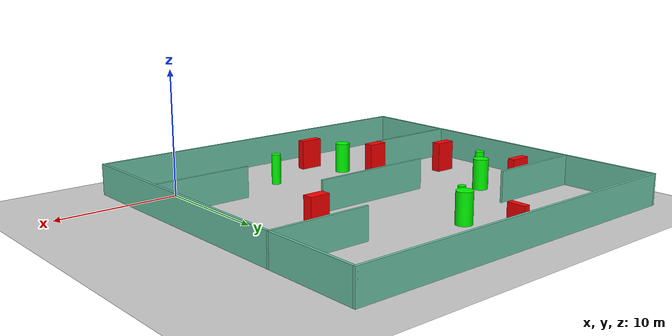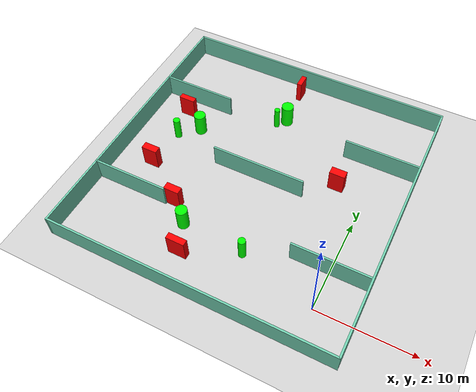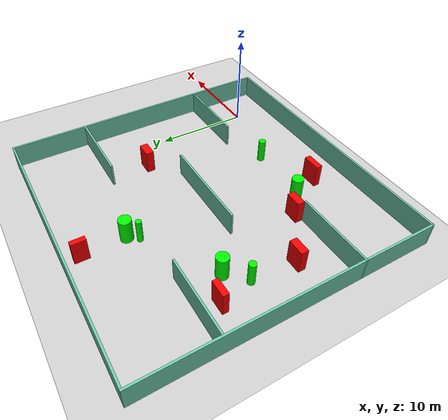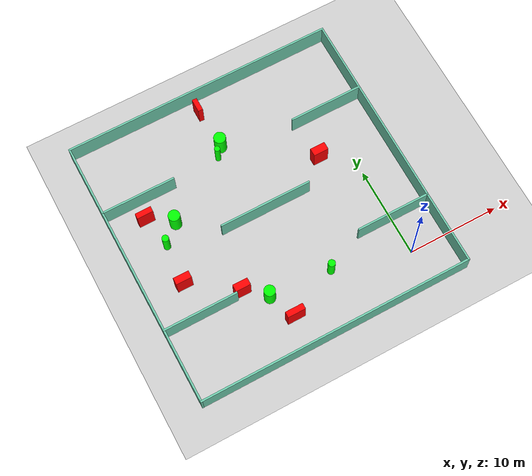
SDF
<sdf version="1.7">
 <world name="default">
  <light name="sun" type="directional">
   <pose>0 0 10 0 -0 0</pose>
   <diffuse>0.8 0.8 0.8 1</diffuse>
   <specular>0.2 0.2 0.2 1</specular>
   <attenuation>
    <range>1000</range>
    <constant>0.9</constant>
    <linear>0.01</linear>
    <quadratic>0.001</quadratic>
   </attenuation>
   <direction>-0.5 0.1 -0.9</direction>
   <spot><inner_angle>0</inner_angle><outer_angle>0</outer_angle><falloff>0</falloff></spot>
  </light>
  <model name="ground_plane">
   <static>1</static>
   <link name="link">
    <collision name="collision">
     <geometry><plane><normal>0 0 1</normal><size>100 100</size></plane></geometry>
     <surface>
      <contact><collide_bitmask>65535</collide_bitmask></contact>
      <friction><ode><mu>100</mu><mu2>50</mu2></ode></friction>
     </surface>
    </collision>
    <visual name="visual">
     <cast_shadows>0</cast_shadows>
     <geometry><plane><normal>0 0 1</normal><size>100 100</size></plane></geometry>
     <material>
      <script><uri>file://media/materials/scripts/gazebo.material</uri><name>Gazebo/Grey</name></script>
     </material>
    </visual>
   </link>
  </model>
  <gravity>0 0 -9.8</gravity>
  <magnetic_field>6e-06 2.3e-05 -4.2e-05</magnetic_field>
  <atmosphere type="adiabatic"/>
  <physics type="ode">
   <max_step_size>0.001</max_step_size>
   <real_time_factor>1</real_time_factor>
   <real_time_update_rate>1000</real_time_update_rate>
  </physics>
  <scene><ambient>0.4 0.4 0.4 1</ambient><background>0.7 0.7 0.7 1</background><shadows>1</shadows></scene>
  <spherical_coordinates>
   <surface_model>EARTH_WGS84</surface_model>
   <latitude_deg>0</latitude_deg>
   <longitude_deg>0</longitude_deg>
   <elevation>0</elevation>
   <heading_deg>0</heading_deg>
  </spherical_coordinates>
  <model name="my_base_walls">
   <link name="Wall_10">
    <collision name="Wall_10_Collision">
     <geometry><box><size>8.2 0.2 2.5</size></box></geometry>
     <pose>0 0 1.25 0 -0 0</pose>
    </collision>
    <visual name="Wall_10_Visual">
     <pose>0 0 1.25 0 -0 0</pose>
     <geometry><box><size>8.2 0.2 2.5</size></box></geometry>
     <material>
      <script><uri>file://media/materials/scripts/gazebo.material</uri><name>Gazebo/Grey</name></script>
      <ambient>0.435294 0.796078 0.67451 1</ambient>
     </material>
     <meta><layer>0</layer></meta>
    </visual>
    <pose>-11 -7 0 0 -0 0</pose>
   </link>
   <link name="Wall_12">
    <collision name="Wall_12_Collision">
     <geometry><box><size>8.2 0.2 2.5</size></box></geometry>
     <pose>0 0 1.25 0 -0 0</pose>
    </collision>
    <visual name="Wall_12_Visual">
     <pose>0 0 1.25 0 -0 0</pose>
     <geometry><box><size>8.2 0.2 2.5</size></box></geometry>
     <material>
      <script><uri>file://media/materials/scripts/gazebo.material</uri><name>Gazebo/Grey</name></script>
      <ambient>0.435294 0.796078 0.67451 1</ambient>
     </material>
     <meta><layer>0</layer></meta>
    </visual>
    <pose>-11 7 0 0 -0 0</pose>
   </link>
   <link name="Wall_14">
    <collision name="Wall_14_Collision">
     <geometry><box><size>8.2 0.2 2.5</size></box></geometry>
     <pose>0 0 1.25 0 -0 0</pose>
    </collision>
    <visual name="Wall_14_Visual">
     <pose>0 0 1.25 0 -0 0</pose>
     <geometry><box><size>8.2 0.2 2.5</size></box></geometry>
     <material>
      <script><uri>file://media/materials/scripts/gazebo.material</uri><name>Gazebo/Grey</name></script>
      <ambient>0.435294 0.796078 0.67451 1</ambient>
     </material>
     <meta><layer>0</layer></meta>
    </visual>
    <pose>11 7 0 0 -0 3.14159</pose>
   </link>
   <link name="Wall_16">
    <collision name="Wall_16_Collision">
     <geometry><box><size>10.2 0.2 2.5</size></box></geometry>
     <pose>0 0 1.25 0 -0 0</pose>
    </collision>
    <visual name="Wall_16_Visual">
     <pose>0 0 1.25 0 -0 0</pose>
     <geometry><box><size>10.2 0.2 2.5</size></box></geometry>
     <material>
      <script><uri>file://media/materials/scripts/gazebo.material</uri><name>Gazebo/Grey</name></script>
      <ambient>0.435294 0.796078 0.67451 1</ambient>
     </material>
     <meta><layer>0</layer></meta>
    </visual>
    <pose>0 0 0 0 -0 3.14159</pose>
   </link>
   <link name="Wall_2">
    <collision name="Wall_2_Collision">
     <geometry><box><size>30.2 0.2 2.5</size></box></geometry>
     <pose>0 0 1.25 0 -0 0</pose>
    </collision>
    <visual name="Wall_2_Visual">
     <pose>0 0 1.25 0 -0 0</pose>
     <geometry><box><size>30.2 0.2 2.5</size></box></geometry>
     <material>
      <script><uri>file://media/materials/scripts/gazebo.material</uri><name>Gazebo/Grey</name></script>
      <ambient>0.435294 0.796078 0.67451 1</ambient>
     </material>
     <meta><layer>0</layer></meta>
    </visual>
    <pose>0 -15 0 0 -0 3.14159</pose>
   </link>
   <link name="Wall_3">
    <collision name="Wall_3_Collision">
     <geometry><box><size>30.2 0.2 2.5</size></box></geometry>
     <pose>0 0 1.25 0 -0 0</pose>
    </collision>
    <visual name="Wall_3_Visual">
     <pose>0 0 1.25 0 -0 0</pose>
     <geometry><box><size>30.2 0.2 2.5</size></box></geometry>
     <material>
      <script><uri>file://media/materials/scripts/gazebo.material</uri><name>Gazebo/Grey</name></script>
      <ambient>0.435294 0.796078 0.67451 1</ambient>
     </material>
     <meta><layer>0</layer></meta>
    </visual>
    <pose>-15 0 0 0 -0 1.5708</pose>
   </link>
   <link name="Wall_4">
    <collision name="Wall_4_Collision">
     <geometry><box><size>30.2 0.2 2.5</size></box></geometry>
     <pose>0 0 1.25 0 -0 0</pose>
    </collision>
    <visual name="Wall_4_Visual">
     <pose>0 0 1.25 0 -0 0</pose>
     <geometry><box><size>30.2 0.2 2.5</size></box></geometry>
     <material>
      <script><uri>file://media/materials/scripts/gazebo.material</uri><name>Gazebo/Grey</name></script>
      <ambient>0.435294 0.796078 0.67451 1</ambient>
     </material>
     <meta><layer>0</layer></meta>
    </visual>
    <pose>0 15 0 0 -0 0</pose>
   </link>
   <link name="Wall_6">
    <collision name="Wall_6_Collision">
     <geometry><box><size>30.2 0.2 2.5</size></box></geometry>
     <pose>0 0 1.25 0 -0 0</pose>
    </collision>
    <visual name="Wall_6_Visual">
     <pose>0 0 1.25 0 -0 0</pose>
     <geometry><box><size>30.2 0.2 2.5</size></box></geometry>
     <material>
      <script><uri>file://media/materials/scripts/gazebo.material</uri><name>Gazebo/Grey</name></script>
      <ambient>0.435294 0.796078 0.67451 1</ambient>
     </material>
     <meta><layer>0</layer></meta>
    </visual>
    <pose>15 0 0 0 -0 1.5708</pose>
   </link>
   <link name="Wall_8">
    <collision name="Wall_8_Collision">
     <geometry><box><size>8.2 0.2 2.5</size></box></geometry>
     <pose>0 0 1.25 0 -0 0</pose>
    </collision>
    <visual name="Wall_8_Visual">
     <pose>0 0 1.25 0 -0 0</pose>
     <geometry><box><size>8.2 0.2 2.5</size></box></geometry>
     <material>
      <script><uri>file://media/materials/scripts/gazebo.material</uri><name>Gazebo/Grey</name></script>
      <ambient>0.435294 0.796078 0.67451 1</ambient>
     </material>
     <meta><layer>0</layer></meta>
    </visual>
    <pose>11 -7 0 0 -0 3.14159</pose>
   </link>
   <static>1</static>
   <pose>-11 11 0 0 -0 0</pose>
  </model>
  <model name="cylinder1">
   <static>1</static>
   <link name="link">
    <inertial>
     <mass>1</mass>
     <inertia><ixx>0.5</ixx><ixy>0</ixy><ixz>0</ixz><iyy>0.5</iyy><iyz>0</iyz><izz>1</izz></inertia>
    </inertial>
    <collision name="collision">
     <geometry><cylinder><radius>0.3880605161961707</radius><length>2.5</length></cylinder></geometry>
    </collision>
    <visual name="visual">
     <geometry><cylinder><radius>0.3880605161961707</radius><length>2.5</length></cylinder></geometry>
     <material>
      <ambient>0 1 0 1</ambient>
      <diffuse>0 1 0 1</diffuse>
      <specular>0.1 0.1 0.1 1</specular>
      <emissive>0 0 0 0</emissive>
     </material>
    </visual>
   </link>
   <pose>-8.225519934441053 2.176191332041409 1.25 0 0 0</pose>
  </model>
  <model name="cylinder2">
   <static>1</static>
   <link name="link">
    <inertial>
     <mass>1</mass>
     <inertia><ixx>0.5</ixx><ixy>0</ixy><ixz>0</ixz><iyy>0.5</iyy><iyz>0</iyz><izz>1</izz></inertia>
    </inertial>
    <collision name="collision">
     <geometry><cylinder><radius>0.6279457041311443</radius><length>2.5</length></cylinder></geometry>
    </collision>
    <visual name="visual">
     <geometry><cylinder><radius>0.6279457041311443</radius><length>2.5</length></cylinder></geometry>
     <material>
      <ambient>0 1 0 1</ambient>
      <diffuse>0 1 0 1</diffuse>
      <specular>0.1 0.1 0.1 1</specular>
      <emissive>0 0 0 0</emissive>
     </material>
    </visual>
   </link>
   <pose>-19.763094603374803 14.28086214770748 1.25 0 0 0</pose>
  </model>
  <model name="cylinder3">
   <static>1</static>
   <link name="link">
    <inertial>
     <mass>1</mass>
     <inertia><ixx>0.5</ixx><ixy>0</ixy><ixz>0</ixz><iyy>0.5</iyy><iyz>0</iyz><izz>1</izz></inertia>
    </inertial>
    <collision name="collision">
     <geometry><cylinder><radius>0.372581543884805</radius><length>2.5</length></cylinder></geometry>
    </collision>
    <visual name="visual">
     <geometry><cylinder><radius>0.372581543884805</radius><length>2.5</length></cylinder></geometry>
     <material>
      <ambient>0 1 0 1</ambient>
      <diffuse>0 1 0 1</diffuse>
      <specular>0.1 0.1 0.1 1</specular>
      <emissive>0 0 0 0</emissive>
     </material>
    </visual>
   </link>
   <pose>-21.634636757355253 12.497472394875746 1.25 0 0 0</pose>
  </model>
  <model name="cylinder4">
   <static>1</static>
   <link name="link">
    <inertial>
     <mass>1</mass>
     <inertia><ixx>0.5</ixx><ixy>0</ixy><ixz>0</ixz><iyy>0.5</iyy><iyz>0</iyz><izz>1</izz></inertia>
    </inertial>
    <collision name="collision">
     <geometry><cylinder><radius>0.30265475263785174</radius><length>2.5</length></cylinder></geometry>
    </collision>
    <visual name="visual">
     <geometry><cylinder><radius>0.30265475263785174</radius><length>2.5</length></cylinder></geometry>
     <material>
      <ambient>0 1 0 1</ambient>
      <diffuse>0 1 0 1</diffuse>
      <specular>0.1 0.1 0.1 1</specular>
      <emissive>0 0 0 0</emissive>
     </material>
    </visual>
   </link>
   <pose>-12.512292156126895 18.782479808547585 1.25 0 0 0</pose>
  </model>
  <model name="cylinder5">
   <static>1</static>
   <link name="link">
    <inertial>
     <mass>1</mass>
     <inertia><ixx>0.5</ixx><ixy>0</ixy><ixz>0</ixz><iyy>0.5</iyy><iyz>0</iyz><izz>1</izz></inertia>
    </inertial>
    <collision name="collision">
     <geometry><cylinder><radius>0.6094330856534729</radius><length>2.5</length></cylinder></geometry>
    </collision>
    <visual name="visual">
     <geometry><cylinder><radius>0.6094330856534729</radius><length>2.5</length></cylinder></geometry>
     <material>
      <ambient>0 1 0 1</ambient>
      <diffuse>0 1 0 1</diffuse>
      <specular>0.1 0.1 0.1 1</specular>
      <emissive>0 0 0 0</emissive>
     </material>
    </visual>
   </link>
   <pose>-15.031928560813157 2.6130141485524536 1.25 0 0 0</pose>
  </model>
  <model name="cylinder6">
   <static>1</static>
   <link name="link">
    <inertial>
     <mass>1</mass>
     <inertia><ixx>0.5</ixx><ixy>0</ixy><ixz>0</ixz><iyy>0.5</iyy><iyz>0</iyz><izz>1</izz></inertia>
    </inertial>
    <collision name="collision">
     <geometry><cylinder><radius>0.6564756208929989</radius><length>2.5</length></cylinder></geometry>
    </collision>
    <visual name="visual">
     <geometry><cylinder><radius>0.6564756208929989</radius><length>2.5</length></cylinder></geometry>
     <material>
      <ambient>0 1 0 1</ambient>
      <diffuse>0 1 0 1</diffuse>
      <specular>0.1 0.1 0.1 1</specular>
      <emissive>0 0 0 0</emissive>
     </material>
    </visual>
   </link>
   <pose>-11.701287335221686 19.786057188479578 1.25 0 0 0</pose>
  </model>
  <model name="box1">
   <static>1</static>
   <link name="link">
    <inertial>
     <mass>1</mass>
     <inertia><ixx>0.083</ixx><ixy>0</ixy><ixz>0</ixz><iyy>0.083</iyy><iyz>0</iyz><izz>0.083</izz></inertia>
    </inertial>
    <collision name="collision">
     <geometry><box><size>1.6469118887607246 0.854537909746353 2.5</size></box></geometry>
    </collision>
    <visual name="visual">
     <geometry><box><size>1.6469118887607246 0.854537909746353 2.5</size></box></geometry>
     <material>
      <ambient>1 0 0 1</ambient>
      <diffuse>1 0 0 1</diffuse>
      <specular>0.1 0.1 0.1 1</specular>
      <emissive>0 0 0 0</emissive>
     </material>
    </visual>
    <sensor name="my_contact" type="contact">
     <contact><collision>box_collision</collision><topic>__default_topic__</topic></contact>
    </sensor>
   </link>
   <pose>-3.2256513854563806 13.684131441750278 1.25 0 0 0</pose>
  </model>
  <model name="box2">
   <static>1</static>
   <link name="link">
    <inertial>
     <mass>1</mass>
     <inertia><ixx>0.083</ixx><ixy>0</ixy><ixz>0</ixz><iyy>0.083</iyy><iyz>0</iyz><izz>0.083</izz></inertia>
    </inertial>
    <collision name="collision">
     <geometry><box><size>1.9555676881149475 0.6520660061620658 2.5</size></box></geometry>
    </collision>
    <visual name="visual">
     <geometry><box><size>1.9555676881149475 0.6520660061620658 2.5</size></box></geometry>
     <material>
      <ambient>1 0 0 1</ambient>
      <diffuse>1 0 0 1</diffuse>
      <specular>0.1 0.1 0.1 1</specular>
      <emissive>0 0 0 0</emissive>
     </material>
    </visual>
    <sensor name="my_contact" type="contact">
     <contact><collision>box_collision</collision><topic>__default_topic__</topic></contact>
    </sensor>
   </link>
   <pose>-13.765415109105218 -0.3858643080102109 1.25 0 0 0</pose>
  </model>
  <model name="box3">
   <static>1</static>
   <link name="link">
    <inertial>
     <mass>1</mass>
     <inertia><ixx>0.083</ixx><ixy>0</ixy><ixz>0</ixz><iyy>0.083</iyy><iyz>0</iyz><izz>0.083</izz></inertia>
    </inertial>
    <collision name="collision">
     <geometry><box><size>1.7612477569036242 0.6122013543032726 2.5</size></box></geometry>
    </collision>
    <visual name="visual">
     <geometry><box><size>1.7612477569036242 0.6122013543032726 2.5</size></box></geometry>
     <material>
      <ambient>1 0 0 1</ambient>
      <diffuse>1 0 0 1</diffuse>
      <specular>0.1 0.1 0.1 1</specular>
      <emissive>0 0 0 0</emissive>
     </material>
    </visual>
    <sensor name="my_contact" type="contact">
     <contact><collision>box_collision</collision><topic>__default_topic__</topic></contact>
    </sensor>
   </link>
   <pose>-22.29418914329964 16.00987606391296 1.25 0 0 0</pose>
  </model>
  <model name="box4">
   <static>1</static>
   <link name="link">
    <inertial>
     <mass>1</mass>
     <inertia><ixx>0.083</ixx><ixy>0</ixy><ixz>0</ixz><iyy>0.083</iyy><iyz>0</iyz><izz>0.083</izz></inertia>
    </inertial>
    <collision name="collision">
     <geometry><box><size>1.706743227553913 0.7778435058521282 2.5</size></box></geometry>
    </collision>
    <visual name="visual">
     <geometry><box><size>1.706743227553913 0.7778435058521282 2.5</size></box></geometry>
     <material>
      <ambient>1 0 0 1</ambient>
      <diffuse>1 0 0 1</diffuse>
      <specular>0.1 0.1 0.1 1</specular>
      <emissive>0 0 0 0</emissive>
     </material>
    </visual>
    <sensor name="my_contact" type="contact">
     <contact><collision>box_collision</collision><topic>__default_topic__</topic></contact>
    </sensor>
   </link>
   <pose>-21.99980488155655 7.94843282468195 1.25 0 0 0</pose>
  </model>
  <model name="box5">
   <static>1</static>
   <link name="link">
    <inertial>
     <mass>1</mass>
     <inertia><ixx>0.083</ixx><ixy>0</ixy><ixz>0</ixz><iyy>0.083</iyy><iyz>0</iyz><izz>0.083</izz></inertia>
    </inertial>
    <collision name="collision">
     <geometry><box><size>0.5324155089263052 1.4773055689018018 2.5</size></box></geometry>
    </collision>
    <visual name="visual">
     <geometry><box><size>0.5324155089263052 1.4773055689018018 2.5</size></box></geometry>
     <material>
      <ambient>1 0 0 1</ambient>
      <diffuse>1 0 0 1</diffuse>
      <specular>0.1 0.1 0.1 1</specular>
      <emissive>0 0 0 0</emissive>
     </material>
    </visual>
    <sensor name="my_contact" type="contact">
     <contact><collision>box_collision</collision><topic>__default_topic__</topic></contact>
    </sensor>
   </link>
   <pose>-11.99849952919492 24.294302664504766 1.25 0 0 0</pose>
  </model>
  <model name="box6">
   <static>1</static>
   <link name="link">
    <inertial>
     <mass>1</mass>
     <inertia><ixx>0.083</ixx><ixy>0</ixy><ixz>0</ixz><iyy>0.083</iyy><iyz>0</iyz><izz>0.083</izz></inertia>
    </inertial>
    <collision name="collision">
     <geometry><box><size>1.6513170363086962 0.780972772557208 2.5</size></box></geometry>
    </collision>
    <visual name="visual">
     <geometry><box><size>1.6513170363086962 0.780972772557208 2.5</size></box></geometry>
     <material>
      <ambient>1 0 0 1</ambient>
      <diffuse>1 0 0 1</diffuse>
      <specular>0.1 0.1 0.1 1</specular>
      <emissive>0 0 0 0</emissive>
     </material>
    </visual>
    <sensor name="my_contact" type="contact">
     <contact><collision>box_collision</collision><topic>__default_topic__</topic></contact>
    </sensor>
   </link>
   <pose>-17.17371629500053 4.488326060604612 1.25 0 0 0</pose>
  </model>
 </world>
</sdf>
